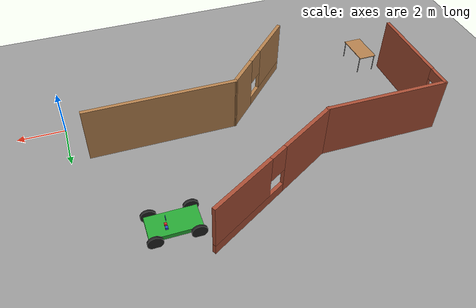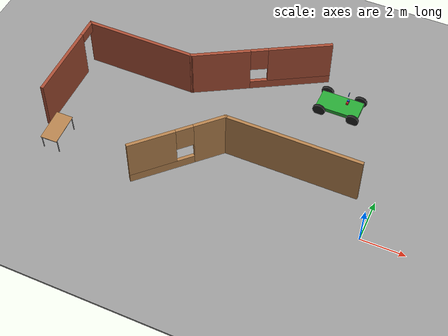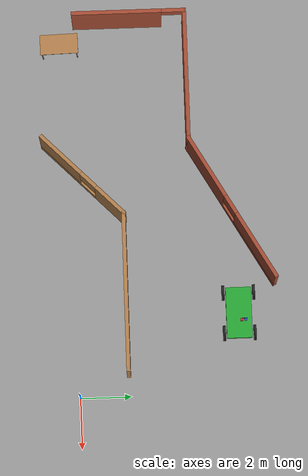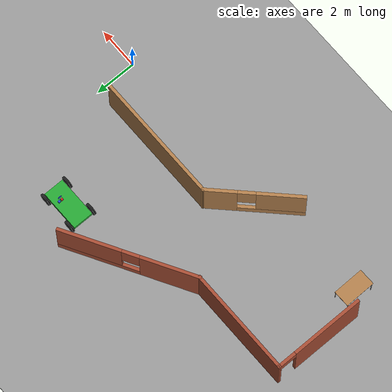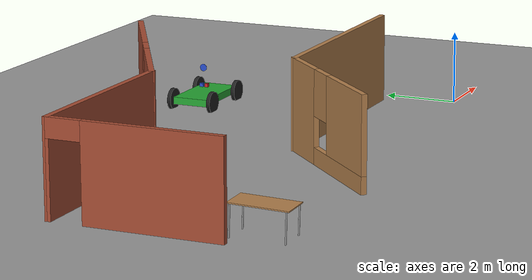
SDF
<sdf version="1.6">
 <world name="default">
  <model name="ground_plane">
   <static>1</static>
   <link name="link">
    <collision name="collision">
     <geometry><plane><normal>0 0 1</normal><size>100 100</size></plane></geometry>
     <surface>
      <contact><collide_bitmask>65535</collide_bitmask></contact>
      <friction><ode><mu>100</mu><mu2>50</mu2></ode></friction>
     </surface>
    </collision>
    <visual name="visual">
     <cast_shadows>0</cast_shadows>
     <geometry><plane><normal>0 0 1</normal><size>100 100</size></plane></geometry>
     <material>
      <script><uri>file://media/materials/scripts/gazebo.material</uri><name>Gazebo/Grey</name></script>
     </material>
    </visual>
   </link>
  </model>
  <model name="car">
   <link name="chassis">
    <pose>0 0 0.3 0 -0 0</pose>
    <collision name="collision"><geometry><box><size>2 1 0.2</size></box></geometry></collision>
    <visual name="visual">
     <geometry><box><size>2 1 0.2</size></box></geometry>
     <material>
      <script><uri>file://media/materials/scripts/gazebo.material</uri><name>Gazebo/Green</name></script>
     </material>
    </visual>
    <inertial>
     <inertia><ixx>1</ixx><ixy>0</ixy><ixz>0</ixz><iyy>1</iyy><iyz>0</iyz><izz>1</izz></inertia>
     <mass>1</mass>
    </inertial>
   </link>
   <link name="front_left_wheel">
    <pose>0.8 0.6 0.3 -0 1.5707 1.5707</pose>
    <collision name="collision">
     <geometry><cylinder><radius>0.3</radius><length>0.1</length></cylinder></geometry>
    </collision>
    <visual name="visual">
     <geometry><cylinder><radius>0.3</radius><length>0.1</length></cylinder></geometry>
     <material>
      <script><uri>file://media/materials/scripts/gazebo.material</uri><name>Gazebo/Black</name></script>
     </material>
    </visual>
    <inertial>
     <inertia><ixx>1</ixx><ixy>0</ixy><ixz>0</ixz><iyy>1</iyy><iyz>0</iyz><izz>1</izz></inertia>
     <mass>1</mass>
    </inertial>
   </link>
   <link name="front_right_wheel">
    <pose>0.8 -0.6 0.3 -0 1.5707 1.5707</pose>
    <collision name="collision">
     <geometry><cylinder><radius>0.3</radius><length>0.1</length></cylinder></geometry>
    </collision>
    <visual name="visual">
     <geometry><cylinder><radius>0.3</radius><length>0.1</length></cylinder></geometry>
     <material>
      <script><uri>file://media/materials/scripts/gazebo.material</uri><name>Gazebo/Black</name></script>
     </material>
    </visual>
    <inertial>
     <inertia><ixx>1</ixx><ixy>0</ixy><ixz>0</ixz><iyy>1</iyy><iyz>0</iyz><izz>1</izz></inertia>
     <mass>1</mass>
    </inertial>
   </link>
   <link name="back_right_wheel">
    <pose>-0.8 -0.6 0.3 -0 1.5707 1.5707</pose>
    <collision name="collision">
     <geometry><cylinder><radius>0.3</radius><length>0.1</length></cylinder></geometry>
    </collision>
    <visual name="visual">
     <geometry><cylinder><radius>0.3</radius><length>0.1</length></cylinder></geometry>
     <material>
      <script><uri>file://media/materials/scripts/gazebo.material</uri><name>Gazebo/Black</name></script>
     </material>
    </visual>
    <inertial>
     <inertia><ixx>1</ixx><ixy>0</ixy><ixz>0</ixz><iyy>1</iyy><iyz>0</iyz><izz>1</izz></inertia>
     <mass>1</mass>
    </inertial>
   </link>
   <link name="back_left_wheel">
    <pose>-0.8 0.6 0.3 -0 1.5707 1.5707</pose>
    <collision name="collision">
     <geometry><cylinder><radius>0.3</radius><length>0.1</length></cylinder></geometry>
    </collision>
    <visual name="visual">
     <geometry><cylinder><radius>0.3</radius><length>0.1</length></cylinder></geometry>
     <material>
      <script><uri>file://media/materials/scripts/gazebo.material</uri><name>Gazebo/Black</name></script>
     </material>
    </visual>
    <inertial>
     <inertia><ixx>1</ixx><ixy>0</ixy><ixz>0</ixz><iyy>1</iyy><iyz>0</iyz><izz>1</izz></inertia>
     <mass>1</mass>
    </inertial>
   </link>
   <link name="gas_pedal">
    <pose>0.3 0.1 0.5 0 -0 0</pose>
    <collision name="collision"><geometry><box><size>0.1 0.1 0.1</size></box></geometry></collision>
    <visual name="visual">
     <geometry><box><size>0.1 0.1 0.1</size></box></geometry>
     <material>
      <script><uri>file://media/materials/scripts/gazebo.material</uri><name>Gazebo/Red</name></script>
     </material>
    </visual>
    <inertial>
     <inertia><ixx>1</ixx><ixy>0</ixy><ixz>0</ixz><iyy>1</iyy><iyz>0</iyz><izz>1</izz></inertia>
     <mass>1</mass>
    </inertial>
   </link>
   <link name="brake_pedal">
    <pose>0.3 0.25 0.5 0 -0 0</pose>
    <collision name="collision"><geometry><box><size>0.1 0.1 0.1</size></box></geometry></collision>
    <visual name="visual">
     <geometry><box><size>0.1 0.1 0.1</size></box></geometry>
     <material>
      <script><uri>file://media/materials/scripts/gazebo.material</uri><name>Gazebo/Blue</name></script>
     </material>
    </visual>
    <inertial>
     <inertia><ixx>1</ixx><ixy>0</ixy><ixz>0</ixz><iyy>1</iyy><iyz>0</iyz><izz>1</izz></inertia>
     <mass>1</mass>
    </inertial>
   </link>
   <link name="steering_wheel">
    <pose>0.3 0.2 1 0 1.5707 0</pose>
    <collision name="collision">
     <geometry><cylinder><radius>0.1</radius><length>0.01</length></cylinder></geometry>
    </collision>
    <visual name="visual">
     <geometry><cylinder><radius>0.1</radius><length>0.01</length></cylinder></geometry>
     <material>
      <script><uri>file://media/materials/scripts/gazebo.material</uri><name>Gazebo/Blue</name></script>
     </material>
    </visual>
    <inertial>
     <inertia><ixx>1</ixx><ixy>0</ixy><ixz>0</ixz><iyy>1</iyy><iyz>0</iyz><izz>1</izz></inertia>
     <mass>1</mass>
    </inertial>
   </link>
   <joint name="gas_joint" type="prismatic">
    <parent>chassis</parent>
    <child>gas_pedal</child>
    <axis>
     <xyz>1 0 0</xyz>
     <limit><lower>0</lower><upper>0.2</upper></limit>
     <use_parent_model_frame>1</use_parent_model_frame>
     <dynamics><spring_reference>0</spring_reference><spring_stiffness>0</spring_stiffness></dynamics>
    </axis>
   </joint>
   <joint name="brake_joint" type="prismatic">
    <parent>chassis</parent>
    <child>brake_pedal</child>
    <axis>
     <xyz>1 0 0</xyz>
     <limit><lower>0</lower><upper>0.2</upper></limit>
     <use_parent_model_frame>1</use_parent_model_frame>
     <dynamics><spring_reference>0</spring_reference><spring_stiffness>0</spring_stiffness></dynamics>
    </axis>
   </joint>
   <joint name="steering_joint" type="revolute">
    <parent>chassis</parent>
    <child>steering_wheel</child>
    <axis>
     <xyz>1 0 0</xyz>
     <limit><lower>-7.853</lower><upper>7.853</upper></limit>
     <use_parent_model_frame>1</use_parent_model_frame>
     <dynamics><spring_reference>0</spring_reference><spring_stiffness>0</spring_stiffness></dynamics>
    </axis>
   </joint>
   <joint name="front_left_joint" type="revolute2">
    <parent>chassis</parent>
    <child>front_left_wheel</child>
    <axis>
     <xyz>0 0 1</xyz>
     <limit><lower>6.95329e-06</lower><upper>6.95329e-06</upper></limit>
     <use_parent_model_frame>1</use_parent_model_frame>
     <dynamics><spring_reference>0</spring_reference><spring_stiffness>0</spring_stiffness></dynamics>
    </axis>
    <axis2>
     <xyz>0 1 0</xyz>
     <use_parent_model_frame>1</use_parent_model_frame>
     <dynamics><spring_reference>0</spring_reference><spring_stiffness>0</spring_stiffness></dynamics>
    </axis2>
    <physics><ode><limit><cfm>0</cfm><erp>0.9</erp></limit></ode></physics>
   </joint>
   <joint name="front_right_joint" type="revolute2">
    <parent>chassis</parent>
    <child>front_right_wheel</child>
    <axis>
     <xyz>0 0 1</xyz>
     <limit><lower>6.95329e-06</lower><upper>6.95329e-06</upper></limit>
     <use_parent_model_frame>1</use_parent_model_frame>
     <dynamics><spring_reference>0</spring_reference><spring_stiffness>0</spring_stiffness></dynamics>
    </axis>
    <axis2>
     <xyz>0 1 0</xyz>
     <use_parent_model_frame>1</use_parent_model_frame>
     <dynamics><spring_reference>0</spring_reference><spring_stiffness>0</spring_stiffness></dynamics>
    </axis2>
    <physics><ode><limit><cfm>0</cfm><erp>0.9</erp></limit></ode></physics>
   </joint>
   <joint name="back_right_joint" type="revolute2">
    <parent>chassis</parent>
    <child>back_right_wheel</child>
    <axis>
     <xyz>0 0 1</xyz>
     <limit><lower>0</lower><upper>0</upper></limit>
     <use_parent_model_frame>1</use_parent_model_frame>
     <dynamics><spring_reference>0</spring_reference><spring_stiffness>0</spring_stiffness></dynamics>
    </axis>
    <axis2>
     <xyz>0 1 0</xyz>
     <use_parent_model_frame>1</use_parent_model_frame>
     <dynamics><spring_reference>0</spring_reference><spring_stiffness>0</spring_stiffness></dynamics>
    </axis2>
    <physics><ode><limit><cfm>0</cfm><erp>0.9</erp></limit></ode></physics>
   </joint>
   <joint name="back_left_joint" type="revolute2">
    <parent>chassis</parent>
    <child>back_left_wheel</child>
    <axis>
     <xyz>0 0 1</xyz>
     <limit><lower>0</lower><upper>0</upper></limit>
     <use_parent_model_frame>1</use_parent_model_frame>
     <dynamics><spring_reference>0</spring_reference><spring_stiffness>0</spring_stiffness></dynamics>
    </axis>
    <axis2>
     <xyz>0 1 0</xyz>
     <use_parent_model_frame>1</use_parent_model_frame>
     <dynamics><spring_reference>0</spring_reference><spring_stiffness>0</spring_stiffness></dynamics>
    </axis2>
    <physics><ode><limit><cfm>0</cfm><erp>0.9</erp></limit></ode></physics>
   </joint>
   <plugin name="vehicle" filename="libVehiclePlugin.so">
    <front_left>front_left_joint</front_left>
    <front_right>front_right_joint</front_right>
    <back_left>back_left_joint</back_left>
    <back_right>back_right_joint</back_right>
    <gas>gas_joint</gas>
    <brake>brake_joint</brake>
    <steering>steering_joint</steering>
    <front_power>10</front_power>
    <rear_power>10</rear_power>
    <tire_angle_range>0.5</tire_angle_range>
    <max_speed>10</max_speed>
    <aero_load>0.1</aero_load>
   </plugin>
   <pose>-3.14883 6.29955 -0.002614 -0.000274 0.000925 0.000534</pose>
  </model>
  <model name="office">
   <link name="Wall_21">
    <pose>-4.52938 1.29817 0 0 0 -2.35619</pose>
    <visual name="Wall_21_Visual_3">
     <pose>-0.314868 0 1.9 0 -0 0</pose>
     <geometry><box><size>0.8 0.15 1.2</size></box></geometry>
     <material>
      <script><uri>file://media/materials/scripts/gazebo.material</uri><name>Gazebo/Wood</name></script>
      <ambient>0.435294 0.796078 0.67451 1</ambient>
      <shader type="pixel"/>
      <diffuse>1 1 1 1</diffuse>
      <specular>0.2 0.2 0.2 1</specular>
      <emissive>0 0 0 1</emissive>
     </material>
     <meta><layer>0</layer></meta>
    </visual>
    <visual name="Wall_21_Visual_2">
     <pose>1.16757 0 1.5 0 -0 0</pose>
     <geometry><box><size>2.16487 0.15 2</size></box></geometry>
     <material>
      <script><uri>file://media/materials/scripts/gazebo.material</uri><name>Gazebo/Wood</name></script>
      <ambient>0.435294 0.796078 0.67451 1</ambient>
      <shader type="pixel"/>
      <diffuse>1 1 1 1</diffuse>
      <specular>0.2 0.2 0.2 1</specular>
      <emissive>0 0 0 1</emissive>
     </material>
     <meta><layer>0</layer></meta>
    </visual>
    <visual name="Wall_21_Visual_1">
     <pose>0.767566 0 0.25 0 -0 0</pose>
     <geometry><box><size>2.96487 0.15 0.5</size></box></geometry>
     <material>
      <script><uri>file://media/materials/scripts/gazebo.material</uri><name>Gazebo/Wood</name></script>
      <ambient>0.435294 0.796078 0.67451 1</ambient>
      <shader type="pixel"/>
      <diffuse>1 1 1 1</diffuse>
      <specular>0.2 0.2 0.2 1</specular>
      <emissive>0 0 0 1</emissive>
     </material>
     <meta><layer>0</layer></meta>
    </visual>
    <visual name="Wall_21_Visual_0">
     <pose>-1.48243 0 1.25 0 -0 0</pose>
     <geometry><box><size>1.53513 0.15 2.5</size></box></geometry>
     <material>
      <script><uri>file://media/materials/scripts/gazebo.material</uri><name>Gazebo/Wood</name></script>
      <ambient>0.435294 0.796078 0.67451 1</ambient>
      <shader type="pixel"/>
      <diffuse>1 1 1 1</diffuse>
      <specular>0.2 0.2 0.2 1</specular>
      <emissive>0 0 0 1</emissive>
     </material>
     <meta><layer>0</layer></meta>
    </visual>
    <collision name="Wall_21_Collision_2">
     <pose>1.16757 0 1.5 0 -0 0</pose>
     <geometry><box><size>2.16487 0.15 2</size></box></geometry>
     <surface>
      <friction>
       <ode><mu>1</mu><mu2>1</mu2><fdir1>0 0 0</fdir1><slip1>0</slip1><slip2>0</slip2></ode>
       <torsional>
        <coefficient>1</coefficient>
        <patch_radius>0</patch_radius>
        <surface_radius>0</surface_radius>
        <use_patch_radius>1</use_patch_radius>
        <ode><slip>0</slip></ode>
       </torsional>
      </friction>
      <bounce><restitution_coefficient>0</restitution_coefficient><threshold>1e+06</threshold></bounce>
      <contact>
       <collide_without_contact>0</collide_without_contact>
       <collide_without_contact_bitmask>1</collide_without_contact_bitmask>
       <collide_bitmask>1</collide_bitmask>
       <ode>
        <soft_cfm>0</soft_cfm>
        <soft_erp>0.2</soft_erp>
        <kp>1e+13</kp>
        <kd>1</kd>
        <max_vel>0.01</max_vel>
        <min_depth>0</min_depth>
       </ode>
       <bullet>
        <split_impulse>1</split_impulse>
        <split_impulse_penetration_threshold>-0.01</split_impulse_penetration_threshold>
        <soft_cfm>0</soft_cfm>
        <soft_erp>0.2</soft_erp>
        <kp>1e+13</kp>
        <kd>1</kd>
       </bullet>
      </contact>
     </surface>
    </collision>
    <collision name="Wall_21_Collision_3">
     <pose>-0.314868 0 1.9 0 -0 0</pose>
     <geometry><box><size>0.8 0.15 1.2</size></box></geometry>
     <surface>
      <friction>
       <ode><mu>1</mu><mu2>1</mu2><fdir1>0 0 0</fdir1><slip1>0</slip1><slip2>0</slip2></ode>
       <torsional>
        <coefficient>1</coefficient>
        <patch_radius>0</patch_radius>
        <surface_radius>0</surface_radius>
        <use_patch_radius>1</use_patch_radius>
        <ode><slip>0</slip></ode>
       </torsional>
      </friction>
      <bounce><restitution_coefficient>0</restitution_coefficient><threshold>1e+06</threshold></bounce>
      <contact>
       <collide_without_contact>0</collide_without_contact>
       <collide_without_contact_bitmask>1</collide_without_contact_bitmask>
       <collide_bitmask>1</collide_bitmask>
       <ode>
        <soft_cfm>0</soft_cfm>
        <soft_erp>0.2</soft_erp>
        <kp>1e+13</kp>
        <kd>1</kd>
        <max_vel>0.01</max_vel>
        <min_depth>0</min_depth>
       </ode>
       <bullet>
        <split_impulse>1</split_impulse>
        <split_impulse_penetration_threshold>-0.01</split_impulse_penetration_threshold>
        <soft_cfm>0</soft_cfm>
        <soft_erp>0.2</soft_erp>
        <kp>1e+13</kp>
        <kd>1</kd>
       </bullet>
      </contact>
     </surface>
    </collision>
    <collision name="Wall_21_Collision_1">
     <pose>0.767566 0 0.25 0 -0 0</pose>
     <geometry><box><size>2.96487 0.15 0.5</size></box></geometry>
     <surface>
      <friction>
       <ode><mu>1</mu><mu2>1</mu2><fdir1>0 0 0</fdir1><slip1>0</slip1><slip2>0</slip2></ode>
       <torsional>
        <coefficient>1</coefficient>
        <patch_radius>0</patch_radius>
        <surface_radius>0</surface_radius>
        <use_patch_radius>1</use_patch_radius>
        <ode><slip>0</slip></ode>
       </torsional>
      </friction>
      <bounce><restitution_coefficient>0</restitution_coefficient><threshold>1e+06</threshold></bounce>
      <contact>
       <collide_without_contact>0</collide_without_contact>
       <collide_without_contact_bitmask>1</collide_without_contact_bitmask>
       <collide_bitmask>1</collide_bitmask>
       <ode>
        <soft_cfm>0</soft_cfm>
        <soft_erp>0.2</soft_erp>
        <kp>1e+13</kp>
        <kd>1</kd>
        <max_vel>0.01</max_vel>
        <min_depth>0</min_depth>
       </ode>
       <bullet>
        <split_impulse>1</split_impulse>
        <split_impulse_penetration_threshold>-0.01</split_impulse_penetration_threshold>
        <soft_cfm>0</soft_cfm>
        <soft_erp>0.2</soft_erp>
        <kp>1e+13</kp>
        <kd>1</kd>
       </bullet>
      </contact>
     </surface>
    </collision>
    <collision name="Wall_21_Collision_0">
     <pose>-1.48243 0 1.25 0 -0 0</pose>
     <geometry><box><size>1.53513 0.15 2.5</size></box></geometry>
     <surface>
      <friction>
       <ode><mu>1</mu><mu2>1</mu2><fdir1>0 0 0</fdir1><slip1>0</slip1><slip2>0</slip2></ode>
       <torsional>
        <coefficient>1</coefficient>
        <patch_radius>0</patch_radius>
        <surface_radius>0</surface_radius>
        <use_patch_radius>1</use_patch_radius>
        <ode><slip>0</slip></ode>
       </torsional>
      </friction>
      <bounce><restitution_coefficient>0</restitution_coefficient><threshold>1e+06</threshold></bounce>
      <contact>
       <collide_without_contact>0</collide_without_contact>
       <collide_without_contact_bitmask>1</collide_without_contact_bitmask>
       <collide_bitmask>1</collide_bitmask>
       <ode>
        <soft_cfm>0</soft_cfm>
        <soft_erp>0.2</soft_erp>
        <kp>1e+13</kp>
        <kd>1</kd>
        <max_vel>0.01</max_vel>
        <min_depth>0</min_depth>
       </ode>
       <bullet>
        <split_impulse>1</split_impulse>
        <split_impulse_penetration_threshold>-0.01</split_impulse_penetration_threshold>
        <soft_cfm>0</soft_cfm>
        <soft_erp>0.2</soft_erp>
        <kp>1e+13</kp>
        <kd>1</kd>
       </bullet>
      </contact>
     </surface>
    </collision>
   </link>
   <link name="Wall_27">
    <pose>0.058577 2.83612 0 0 -0 0</pose>
    <visual name="Wall_27_Visual">
     <pose>0 0 1.25 0 -0 0</pose>
     <geometry><box><size>6.25 0.15 2.5</size></box></geometry>
     <material>
      <script><uri>file://media/materials/scripts/gazebo.material</uri><name>Gazebo/Wood</name></script>
      <ambient>0.435294 0.796078 0.67451 1</ambient>
      <shader type="pixel"/>
      <diffuse>1 1 1 1</diffuse>
      <specular>0.2 0.2 0.2 1</specular>
      <emissive>0 0 0 1</emissive>
     </material>
     <meta><layer>0</layer></meta>
    </visual>
    <collision name="Wall_27_Collision">
     <pose>0 0 1.25 0 -0 0</pose>
     <geometry><box><size>6.25 0.15 2.5</size></box></geometry>
     <surface>
      <friction>
       <ode><mu>1</mu><mu2>1</mu2><fdir1>0 0 0</fdir1><slip1>0</slip1><slip2>0</slip2></ode>
       <torsional>
        <coefficient>1</coefficient>
        <patch_radius>0</patch_radius>
        <surface_radius>0</surface_radius>
        <use_patch_radius>1</use_patch_radius>
        <ode><slip>0</slip></ode>
       </torsional>
      </friction>
      <bounce><restitution_coefficient>0</restitution_coefficient><threshold>1e+06</threshold></bounce>
      <contact>
       <collide_without_contact>0</collide_without_contact>
       <collide_without_contact_bitmask>1</collide_without_contact_bitmask>
       <collide_bitmask>1</collide_bitmask>
       <ode>
        <soft_cfm>0</soft_cfm>
        <soft_erp>0.2</soft_erp>
        <kp>1e+13</kp>
        <kd>1</kd>
        <max_vel>0.01</max_vel>
        <min_depth>0</min_depth>
       </ode>
       <bullet>
        <split_impulse>1</split_impulse>
        <split_impulse_penetration_threshold>-0.01</split_impulse_penetration_threshold>
        <soft_cfm>0</soft_cfm>
        <soft_erp>0.2</soft_erp>
        <kp>1e+13</kp>
        <kd>1</kd>
       </bullet>
      </contact>
     </surface>
    </collision>
   </link>
   <link name="Wall_7">
    <pose>-10.9373 3.2892 0 0 -0 1.5708</pose>
    <visual name="Wall_7_Visual_0">
     <pose>-0.480218 0 1.25 0 -0 0</pose>
     <geometry><box><size>3.53957 0.15 2.5</size></box></geometry>
     <material>
      <script><uri>file://media/materials/scripts/gazebo.material</uri><name>Gazebo/Bricks</name></script>
      <ambient>0.435294 0.796078 0.67451 1</ambient>
      <shader type="pixel"/>
      <diffuse>1 1 1 1</diffuse>
      <specular>0.2 0.2 0.2 1</specular>
      <emissive>0 0 0 1</emissive>
     </material>
     <meta><layer>0</layer></meta>
    </visual>
    <visual name="Wall_7_Visual_1">
     <pose>2.21978 0 1.25 0 -0 0</pose>
     <geometry><box><size>0.060435 0.15 2.5</size></box></geometry>
     <material>
      <script><uri>file://media/materials/scripts/gazebo.material</uri><name>Gazebo/Bricks</name></script>
      <ambient>0.435294 0.796078 0.67451 1</ambient>
      <shader type="pixel"/>
      <diffuse>1 1 1 1</diffuse>
      <specular>0.2 0.2 0.2 1</specular>
      <emissive>0 0 0 1</emissive>
     </material>
     <meta><layer>0</layer></meta>
    </visual>
    <visual name="Wall_7_Visual_2">
     <pose>1.73957 0 2.25 0 -0 0</pose>
     <geometry><box><size>0.9 0.15 0.5</size></box></geometry>
     <material>
      <script><uri>file://media/materials/scripts/gazebo.material</uri><name>Gazebo/Bricks</name></script>
      <ambient>0.435294 0.796078 0.67451 1</ambient>
      <shader type="pixel"/>
      <diffuse>1 1 1 1</diffuse>
      <specular>0.2 0.2 0.2 1</specular>
      <emissive>0 0 0 1</emissive>
     </material>
     <meta><layer>0</layer></meta>
    </visual>
    <collision name="Wall_7_Collision_0">
     <pose>-0.480218 0 1.25 0 -0 0</pose>
     <geometry><box><size>3.53957 0.15 2.5</size></box></geometry>
     <surface>
      <friction>
       <ode><mu>1</mu><mu2>1</mu2><fdir1>0 0 0</fdir1><slip1>0</slip1><slip2>0</slip2></ode>
       <torsional>
        <coefficient>1</coefficient>
        <patch_radius>0</patch_radius>
        <surface_radius>0</surface_radius>
        <use_patch_radius>1</use_patch_radius>
        <ode><slip>0</slip></ode>
       </torsional>
      </friction>
      <bounce><restitution_coefficient>0</restitution_coefficient><threshold>1e+06</threshold></bounce>
      <contact>
       <collide_without_contact>0</collide_without_contact>
       <collide_without_contact_bitmask>1</collide_without_contact_bitmask>
       <collide_bitmask>1</collide_bitmask>
       <ode>
        <soft_cfm>0</soft_cfm>
        <soft_erp>0.2</soft_erp>
        <kp>1e+13</kp>
        <kd>1</kd>
        <max_vel>0.01</max_vel>
        <min_depth>0</min_depth>
       </ode>
       <bullet>
        <split_impulse>1</split_impulse>
        <split_impulse_penetration_threshold>-0.01</split_impulse_penetration_threshold>
        <soft_cfm>0</soft_cfm>
        <soft_erp>0.2</soft_erp>
        <kp>1e+13</kp>
        <kd>1</kd>
       </bullet>
      </contact>
     </surface>
    </collision>
    <collision name="Wall_7_Collision_1">
     <pose>2.21978 0 1.25 0 -0 0</pose>
     <geometry><box><size>0.060435 0.15 2.5</size></box></geometry>
     <surface>
      <friction>
       <ode><mu>1</mu><mu2>1</mu2><fdir1>0 0 0</fdir1><slip1>0</slip1><slip2>0</slip2></ode>
       <torsional>
        <coefficient>1</coefficient>
        <patch_radius>0</patch_radius>
        <surface_radius>0</surface_radius>
        <use_patch_radius>1</use_patch_radius>
        <ode><slip>0</slip></ode>
       </torsional>
      </friction>
      <bounce><restitution_coefficient>0</restitution_coefficient><threshold>1e+06</threshold></bounce>
      <contact>
       <collide_without_contact>0</collide_without_contact>
       <collide_without_contact_bitmask>1</collide_without_contact_bitmask>
       <collide_bitmask>1</collide_bitmask>
       <ode>
        <soft_cfm>0</soft_cfm>
        <soft_erp>0.2</soft_erp>
        <kp>1e+13</kp>
        <kd>1</kd>
        <max_vel>0.01</max_vel>
        <min_depth>0</min_depth>
       </ode>
       <bullet>
        <split_impulse>1</split_impulse>
        <split_impulse_penetration_threshold>-0.01</split_impulse_penetration_threshold>
        <soft_cfm>0</soft_cfm>
        <soft_erp>0.2</soft_erp>
        <kp>1e+13</kp>
        <kd>1</kd>
       </bullet>
      </contact>
     </surface>
    </collision>
    <collision name="Wall_7_Collision_2">
     <pose>1.73957 0 2.25 0 -0 0</pose>
     <geometry><box><size>0.9 0.15 0.5</size></box></geometry>
     <surface>
      <friction>
       <ode><mu>1</mu><mu2>1</mu2><fdir1>0 0 0</fdir1><slip1>0</slip1><slip2>0</slip2></ode>
       <torsional>
        <coefficient>1</coefficient>
        <patch_radius>0</patch_radius>
        <surface_radius>0</surface_radius>
        <use_patch_radius>1</use_patch_radius>
        <ode><slip>0</slip></ode>
       </torsional>
      </friction>
      <bounce><restitution_coefficient>0</restitution_coefficient><threshold>1e+06</threshold></bounce>
      <contact>
       <collide_without_contact>0</collide_without_contact>
       <collide_without_contact_bitmask>1</collide_without_contact_bitmask>
       <collide_bitmask>1</collide_bitmask>
       <ode>
        <soft_cfm>0</soft_cfm>
        <soft_erp>0.2</soft_erp>
        <kp>1e+13</kp>
        <kd>1</kd>
        <max_vel>0.01</max_vel>
        <min_depth>0</min_depth>
       </ode>
       <bullet>
        <split_impulse>1</split_impulse>
        <split_impulse_penetration_threshold>-0.01</split_impulse_penetration_threshold>
        <soft_cfm>0</soft_cfm>
        <soft_erp>0.2</soft_erp>
        <kp>1e+13</kp>
        <kd>1</kd>
       </bullet>
      </contact>
     </surface>
    </collision>
   </link>
   <link name="Wall_8">
    <pose>-8.3873 5.4642 0 0 -0 0</pose>
    <visual name="Wall_8_Visual">
     <pose>0 0 1.25 0 -0 0</pose>
     <geometry><box><size>5.25 0.15 2.5</size></box></geometry>
     <material>
      <script><uri>file://media/materials/scripts/gazebo.material</uri><name>Gazebo/Bricks</name></script>
      <ambient>0.435294 0.796078 0.67451 1</ambient>
      <shader type="pixel"/>
      <diffuse>1 1 1 1</diffuse>
      <specular>0.2 0.2 0.2 1</specular>
      <emissive>0 0 0 1</emissive>
     </material>
     <meta><layer>0</layer></meta>
    </visual>
    <collision name="Wall_8_Collision">
     <pose>0 0 1.25 0 -0 0</pose>
     <geometry><box><size>5.25 0.15 2.5</size></box></geometry>
     <surface>
      <friction>
       <ode><mu>1</mu><mu2>1</mu2><fdir1>0 0 0</fdir1><slip1>0</slip1><slip2>0</slip2></ode>
       <torsional>
        <coefficient>1</coefficient>
        <patch_radius>0</patch_radius>
        <surface_radius>0</surface_radius>
        <use_patch_radius>1</use_patch_radius>
        <ode><slip>0</slip></ode>
       </torsional>
      </friction>
      <bounce><restitution_coefficient>0</restitution_coefficient><threshold>1e+06</threshold></bounce>
      <contact>
       <collide_without_contact>0</collide_without_contact>
       <collide_without_contact_bitmask>1</collide_without_contact_bitmask>
       <collide_bitmask>1</collide_bitmask>
       <ode>
        <soft_cfm>0</soft_cfm>
        <soft_erp>0.2</soft_erp>
        <kp>1e+13</kp>
        <kd>1</kd>
        <max_vel>0.01</max_vel>
        <min_depth>0</min_depth>
       </ode>
       <bullet>
        <split_impulse>1</split_impulse>
        <split_impulse_penetration_threshold>-0.01</split_impulse_penetration_threshold>
        <soft_cfm>0</soft_cfm>
        <soft_erp>0.2</soft_erp>
        <kp>1e+13</kp>
        <kd>1</kd>
       </bullet>
      </contact>
     </surface>
    </collision>
   </link>
   <link name="Wall_9">
    <pose>-3.08767 7.0517 0 0 -0 0.523599</pose>
    <visual name="Wall_9_Visual_0">
     <pose>-1.86997 0 1.25 0 -0 0</pose>
     <geometry><box><size>2.76007 0.15 2.5</size></box></geometry>
     <material>
      <script><uri>file://media/materials/scripts/gazebo.material</uri><name>Gazebo/Bricks</name></script>
      <ambient>0.435294 0.796078 0.67451 1</ambient>
      <shader type="pixel"/>
      <diffuse>1 1 1 1</diffuse>
      <specular>0.2 0.2 0.2 1</specular>
      <emissive>0 0 0 1</emissive>
     </material>
     <meta><layer>0</layer></meta>
    </visual>
    <visual name="Wall_9_Visual_1">
     <pose>1.38003 0 0.25 0 -0 0</pose>
     <geometry><box><size>3.73993 0.15 0.5</size></box></geometry>
     <material>
      <script><uri>file://media/materials/scripts/gazebo.material</uri><name>Gazebo/Bricks</name></script>
      <ambient>0.435294 0.796078 0.67451 1</ambient>
      <shader type="pixel"/>
      <diffuse>1 1 1 1</diffuse>
      <specular>0.2 0.2 0.2 1</specular>
      <emissive>0 0 0 1</emissive>
     </material>
     <meta><layer>0</layer></meta>
    </visual>
    <visual name="Wall_9_Visual_2">
     <pose>1.78003 0 1.5 0 -0 0</pose>
     <geometry><box><size>2.93993 0.15 2</size></box></geometry>
     <material>
      <script><uri>file://media/materials/scripts/gazebo.material</uri><name>Gazebo/Bricks</name></script>
      <ambient>0.435294 0.796078 0.67451 1</ambient>
      <shader type="pixel"/>
      <diffuse>1 1 1 1</diffuse>
      <specular>0.2 0.2 0.2 1</specular>
      <emissive>0 0 0 1</emissive>
     </material>
     <meta><layer>0</layer></meta>
    </visual>
    <visual name="Wall_9_Visual_3">
     <pose>-0.089932 0 1.9 0 -0 0</pose>
     <geometry><box><size>0.8 0.15 1.2</size></box></geometry>
     <material>
      <script><uri>file://media/materials/scripts/gazebo.material</uri><name>Gazebo/Bricks</name></script>
      <ambient>0.435294 0.796078 0.67451 1</ambient>
      <shader type="pixel"/>
      <diffuse>1 1 1 1</diffuse>
      <specular>0.2 0.2 0.2 1</specular>
      <emissive>0 0 0 1</emissive>
     </material>
     <meta><layer>0</layer></meta>
    </visual>
    <collision name="Wall_9_Collision_0">
     <pose>-1.86997 0 1.25 0 -0 0</pose>
     <geometry><box><size>2.76007 0.15 2.5</size></box></geometry>
     <surface>
      <friction>
       <ode><mu>1</mu><mu2>1</mu2><fdir1>0 0 0</fdir1><slip1>0</slip1><slip2>0</slip2></ode>
       <torsional>
        <coefficient>1</coefficient>
        <patch_radius>0</patch_radius>
        <surface_radius>0</surface_radius>
        <use_patch_radius>1</use_patch_radius>
        <ode><slip>0</slip></ode>
       </torsional>
      </friction>
      <bounce><restitution_coefficient>0</restitution_coefficient><threshold>1e+06</threshold></bounce>
      <contact>
       <collide_without_contact>0</collide_without_contact>
       <collide_without_contact_bitmask>1</collide_without_contact_bitmask>
       <collide_bitmask>1</collide_bitmask>
       <ode>
        <soft_cfm>0</soft_cfm>
        <soft_erp>0.2</soft_erp>
        <kp>1e+13</kp>
        <kd>1</kd>
        <max_vel>0.01</max_vel>
        <min_depth>0</min_depth>
       </ode>
       <bullet>
        <split_impulse>1</split_impulse>
        <split_impulse_penetration_threshold>-0.01</split_impulse_penetration_threshold>
        <soft_cfm>0</soft_cfm>
        <soft_erp>0.2</soft_erp>
        <kp>1e+13</kp>
        <kd>1</kd>
       </bullet>
      </contact>
     </surface>
    </collision>
    <collision name="Wall_9_Collision_1">
     <pose>1.38003 0 0.25 0 -0 0</pose>
     <geometry><box><size>3.73993 0.15 0.5</size></box></geometry>
     <surface>
      <friction>
       <ode><mu>1</mu><mu2>1</mu2><fdir1>0 0 0</fdir1><slip1>0</slip1><slip2>0</slip2></ode>
       <torsional>
        <coefficient>1</coefficient>
        <patch_radius>0</patch_radius>
        <surface_radius>0</surface_radius>
        <use_patch_radius>1</use_patch_radius>
        <ode><slip>0</slip></ode>
       </torsional>
      </friction>
      <bounce><restitution_coefficient>0</restitution_coefficient><threshold>1e+06</threshold></bounce>
      <contact>
       <collide_without_contact>0</collide_without_contact>
       <collide_without_contact_bitmask>1</collide_without_contact_bitmask>
       <collide_bitmask>1</collide_bitmask>
       <ode>
        <soft_cfm>0</soft_cfm>
        <soft_erp>0.2</soft_erp>
        <kp>1e+13</kp>
        <kd>1</kd>
        <max_vel>0.01</max_vel>
        <min_depth>0</min_depth>
       </ode>
       <bullet>
        <split_impulse>1</split_impulse>
        <split_impulse_penetration_threshold>-0.01</split_impulse_penetration_threshold>
        <soft_cfm>0</soft_cfm>
        <soft_erp>0.2</soft_erp>
        <kp>1e+13</kp>
        <kd>1</kd>
       </bullet>
      </contact>
     </surface>
    </collision>
    <collision name="Wall_9_Collision_2">
     <pose>1.78003 0 1.5 0 -0 0</pose>
     <geometry><box><size>2.93993 0.15 2</size></box></geometry>
     <surface>
      <friction>
       <ode><mu>1</mu><mu2>1</mu2><fdir1>0 0 0</fdir1><slip1>0</slip1><slip2>0</slip2></ode>
       <torsional>
        <coefficient>1</coefficient>
        <patch_radius>0</patch_radius>
        <surface_radius>0</surface_radius>
        <use_patch_radius>1</use_patch_radius>
        <ode><slip>0</slip></ode>
       </torsional>
      </friction>
      <bounce><restitution_coefficient>0</restitution_coefficient><threshold>1e+06</threshold></bounce>
      <contact>
       <collide_without_contact>0</collide_without_contact>
       <collide_without_contact_bitmask>1</collide_without_contact_bitmask>
       <collide_bitmask>1</collide_bitmask>
       <ode>
        <soft_cfm>0</soft_cfm>
        <soft_erp>0.2</soft_erp>
        <kp>1e+13</kp>
        <kd>1</kd>
        <max_vel>0.01</max_vel>
        <min_depth>0</min_depth>
       </ode>
       <bullet>
        <split_impulse>1</split_impulse>
        <split_impulse_penetration_threshold>-0.01</split_impulse_penetration_threshold>
        <soft_cfm>0</soft_cfm>
        <soft_erp>0.2</soft_erp>
        <kp>1e+13</kp>
        <kd>1</kd>
       </bullet>
      </contact>
     </surface>
    </collision>
    <collision name="Wall_9_Collision_3">
     <pose>-0.089932 0 1.9 0 -0 0</pose>
     <geometry><box><size>0.8 0.15 1.2</size></box></geometry>
     <surface>
      <friction>
       <ode><mu>1</mu><mu2>1</mu2><fdir1>0 0 0</fdir1><slip1>0</slip1><slip2>0</slip2></ode>
       <torsional>
        <coefficient>1</coefficient>
        <patch_radius>0</patch_radius>
        <surface_radius>0</surface_radius>
        <use_patch_radius>1</use_patch_radius>
        <ode><slip>0</slip></ode>
       </torsional>
      </friction>
      <bounce><restitution_coefficient>0</restitution_coefficient><threshold>1e+06</threshold></bounce>
      <contact>
       <collide_without_contact>0</collide_without_contact>
       <collide_without_contact_bitmask>1</collide_without_contact_bitmask>
       <collide_bitmask>1</collide_bitmask>
       <ode>
        <soft_cfm>0</soft_cfm>
        <soft_erp>0.2</soft_erp>
        <kp>1e+13</kp>
        <kd>1</kd>
        <max_vel>0.01</max_vel>
        <min_depth>0</min_depth>
       </ode>
       <bullet>
        <split_impulse>1</split_impulse>
        <split_impulse_penetration_threshold>-0.01</split_impulse_penetration_threshold>
        <soft_cfm>0</soft_cfm>
        <soft_erp>0.2</soft_erp>
        <kp>1e+13</kp>
        <kd>1</kd>
       </bullet>
      </contact>
     </surface>
    </collision>
   </link>
   <static>1</static>
   <pose>-3.94455 -0.92637 0 0 -0 0</pose>
  </model>
  <model name="table_clone">
   <static>1</static>
   <link name="link">
    <collision name="surface">
     <pose>0 0 1 0 -0 0</pose>
     <geometry><box><size>1.5 0.8 0.03</size></box></geometry>
     <surface><friction><ode><mu>0.6</mu><mu2>0.6</mu2></ode></friction></surface>
    </collision>
    <visual name="visual1">
     <pose>0 0 1 0 -0 0</pose>
     <geometry><box><size>1.5 0.8 0.03</size></box></geometry>
     <material>
      <script><uri>file://media/materials/scripts/gazebo.material</uri><name>Gazebo/Wood</name></script>
     </material>
    </visual>
    <collision name="front_left_leg">
     <pose>0.68 0.38 0.5 0 -0 0</pose>
     <geometry><cylinder><radius>0.02</radius><length>1</length></cylinder></geometry>
    </collision>
    <visual name="front_left_leg">
     <pose>0.68 0.38 0.5 0 -0 0</pose>
     <geometry><cylinder><radius>0.02</radius><length>1</length></cylinder></geometry>
     <material>
      <script><uri>file://media/materials/scripts/gazebo.material</uri><name>Gazebo/Grey</name></script>
     </material>
    </visual>
    <collision name="front_right_leg">
     <pose>0.68 -0.38 0.5 0 -0 0</pose>
     <geometry><cylinder><radius>0.02</radius><length>1</length></cylinder></geometry>
    </collision>
    <visual name="front_right_leg">
     <pose>0.68 -0.38 0.5 0 -0 0</pose>
     <geometry><cylinder><radius>0.02</radius><length>1</length></cylinder></geometry>
     <material>
      <script><uri>file://media/materials/scripts/gazebo.material</uri><name>Gazebo/Grey</name></script>
     </material>
    </visual>
    <collision name="back_right_leg">
     <pose>-0.68 -0.38 0.5 0 -0 0</pose>
     <geometry><cylinder><radius>0.02</radius><length>1</length></cylinder></geometry>
    </collision>
    <visual name="back_right_leg">
     <pose>-0.68 -0.38 0.5 0 -0 0</pose>
     <geometry><cylinder><radius>0.02</radius><length>1</length></cylinder></geometry>
     <material>
      <script><uri>file://media/materials/scripts/gazebo.material</uri><name>Gazebo/Grey</name></script>
     </material>
    </visual>
    <collision name="back_left_leg">
     <pose>-0.68 0.38 0.5 0 -0 0</pose>
     <geometry><cylinder><radius>0.02</radius><length>1</length></cylinder></geometry>
    </collision>
    <visual name="back_left_leg">
     <pose>-0.68 0.38 0.5 0 -0 0</pose>
     <geometry><cylinder><radius>0.02</radius><length>1</length></cylinder></geometry>
     <material>
      <script><uri>file://media/materials/scripts/gazebo.material</uri><name>Gazebo/Grey</name></script>
     </material>
    </visual>
   </link>
   <pose>-14.0476 -0.411214 -0.159363 -0.00751 -0.032874 1.59026</pose>
  </model>
  <model name="ground_plane_0">
   <static>1</static>
   <link name="link">
    <collision name="collision">
     <geometry><plane><normal>0 0 1</normal><size>100 100</size></plane></geometry>
     <surface><friction><ode><mu>100</mu><mu2>50</mu2></ode></friction></surface>
    </collision>
    <visual name="visual">
     <cast_shadows>0</cast_shadows>
     <geometry><plane><normal>0 0 1</normal><size>100 100</size></plane></geometry>
     <material>
      <script><uri>file://media/materials/scripts/gazebo.material</uri><name>Gazebo/Grey</name></script>
     </material>
    </visual>
   </link>
   <pose>-2.53954 16.2011 0 0 -0 0</pose>
  </model>
 </world>
</sdf>
